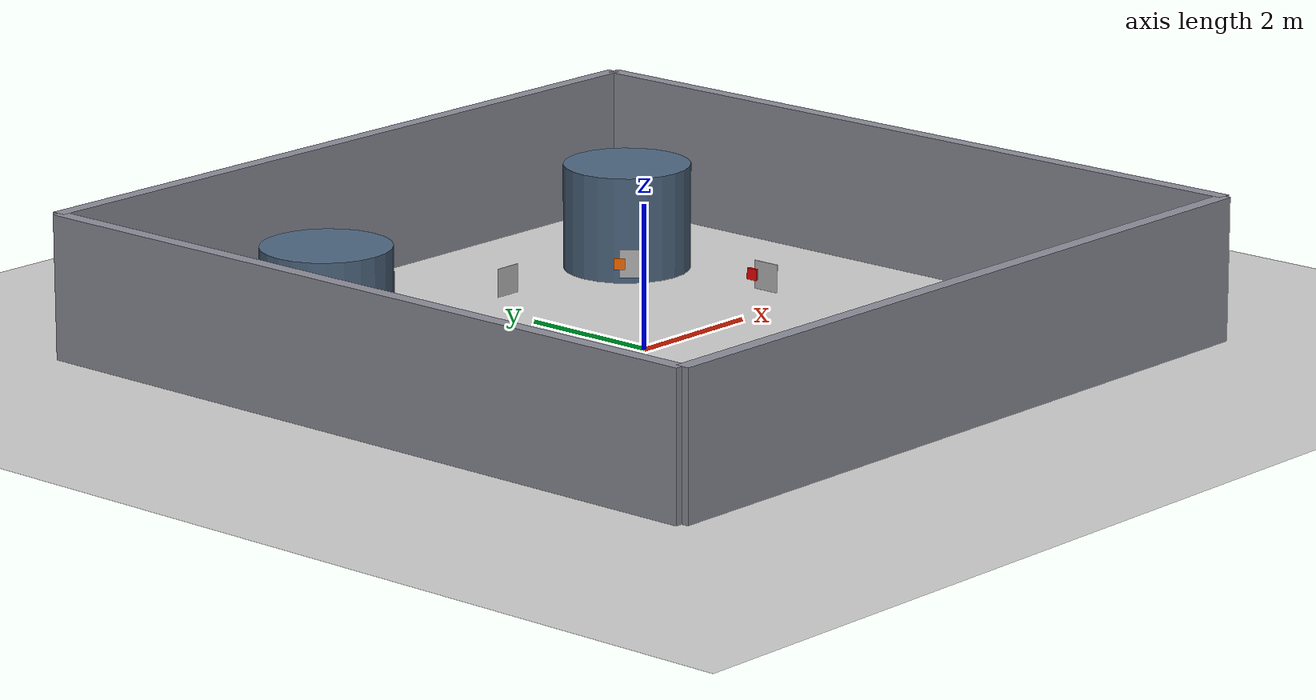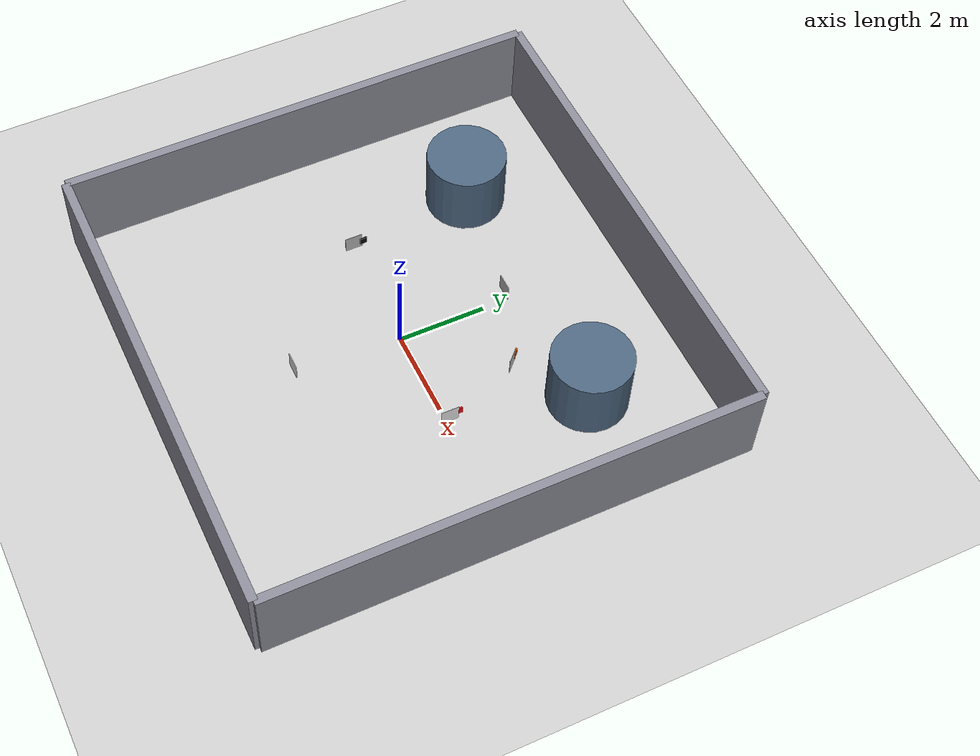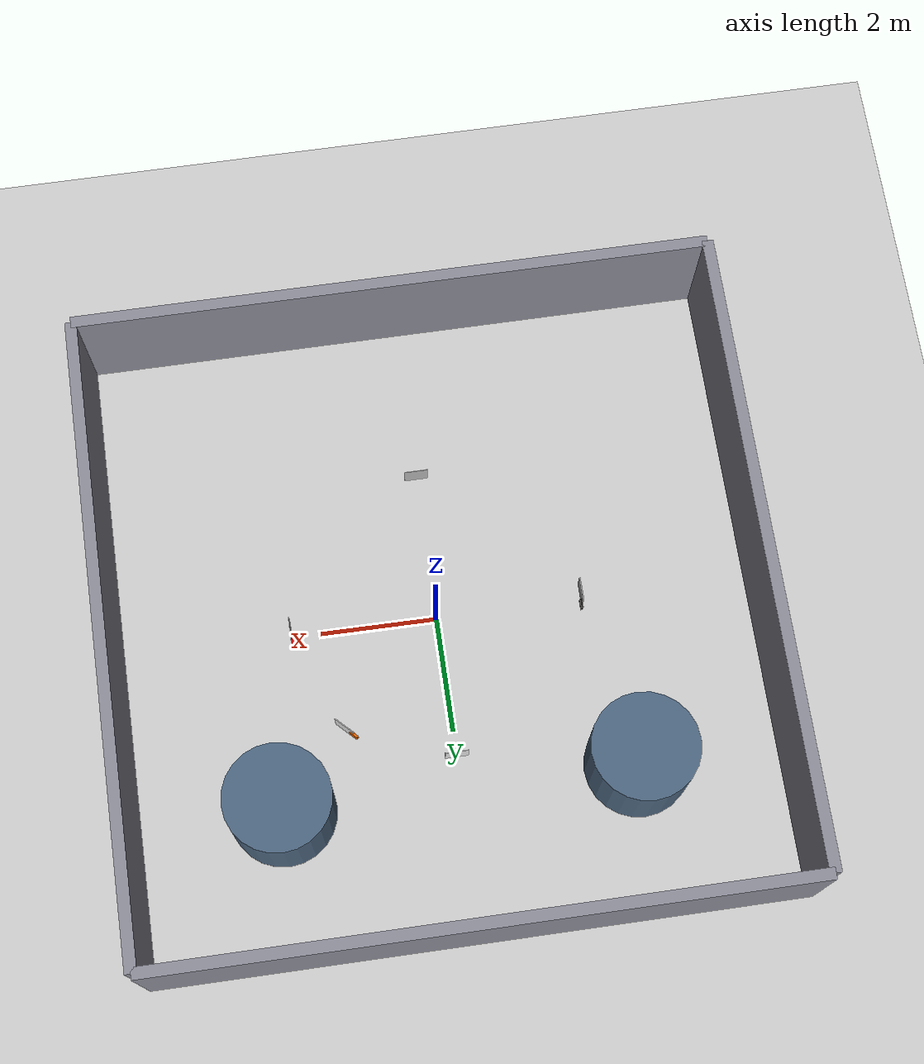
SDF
<?xml version="1.0" ?>
<sdf version="1.6">
  <world name="inspection_world">
    <physics type="ode">
      <max_step_size>0.001</max_step_size>
      <real_time_factor>1</real_time_factor>
      <real_time_update_rate>1000</real_time_update_rate>
    </physics>

    <plugin name="gazebo_ros_init" filename="libgazebo_ros_init.so"/>
    <plugin name="gazebo_ros_factory" filename="libgazebo_ros_factory.so"/>
    <plugin name="gazebo_ros_state" filename="libgazebo_ros_state.so"/>

    <include><uri>model://sun</uri></include>
    <include><uri>model://ground_plane</uri></include>

<model name="wall_0">
  <static>true</static>
  <link name="link">
    <pose>5.5 0.0 1.0 0 0 0</pose>
    <visual name="v"><geometry><box><size>0.2 11.0 2.0</size></box></geometry>
      <material><ambient>0.55 0.55 0.6 1</ambient><diffuse>0.55 0.55 0.6 1</diffuse></material>
    </visual>
    <collision name="c"><geometry><box><size>0.2 11.0 2.0</size></box></geometry></collision>
  </link>
</model>
<model name="wall_1">
  <static>true</static>
  <link name="link">
    <pose>-5.5 0.0 1.0 0 0 0</pose>
    <visual name="v"><geometry><box><size>0.2 11.0 2.0</size></box></geometry>
      <material><ambient>0.55 0.55 0.6 1</ambient><diffuse>0.55 0.55 0.6 1</diffuse></material>
    </visual>
    <collision name="c"><geometry><box><size>0.2 11.0 2.0</size></box></geometry></collision>
  </link>
</model>
<model name="wall_2">
  <static>true</static>
  <link name="link">
    <pose>0.0 5.5 1.0 0 0 0</pose>
    <visual name="v"><geometry><box><size>11.0 0.2 2.0</size></box></geometry>
      <material><ambient>0.55 0.55 0.6 1</ambient><diffuse>0.55 0.55 0.6 1</diffuse></material>
    </visual>
    <collision name="c"><geometry><box><size>11.0 0.2 2.0</size></box></geometry></collision>
  </link>
</model>
<model name="wall_3">
  <static>true</static>
  <link name="link">
    <pose>0.0 -5.5 1.0 0 0 0</pose>
    <visual name="v"><geometry><box><size>11.0 0.2 2.0</size></box></geometry>
      <material><ambient>0.55 0.55 0.6 1</ambient><diffuse>0.55 0.55 0.6 1</diffuse></material>
    </visual>
    <collision name="c"><geometry><box><size>11.0 0.2 2.0</size></box></geometry></collision>
  </link>
</model>
<model name="tank_0">
  <static>true</static>
  <link name="link">
    <pose>3.0 3.0 0.75 0 0 0</pose>
    <visual name="v"><geometry><cylinder><radius>0.9</radius><length>1.5</length></cylinder></geometry>
      <material><ambient>0.3 0.4 0.5 1</ambient><diffuse>0.3 0.4 0.5 1</diffuse></material>
    </visual>
    <collision name="c"><geometry><cylinder><radius>0.9</radius><length>1.5</length></cylinder></geometry></collision>
  </link>
</model>
<model name="tank_1">
  <static>true</static>
  <link name="link">
    <pose>-3.0 3.0 0.75 0 0 0</pose>
    <visual name="v"><geometry><cylinder><radius>0.9</radius><length>1.5</length></cylinder></geometry>
      <material><ambient>0.3 0.4 0.5 1</ambient><diffuse>0.3 0.4 0.5 1</diffuse></material>
    </visual>
    <collision name="c"><geometry><cylinder><radius>0.9</radius><length>1.5</length></cylinder></geometry></collision>
  </link>
</model>
<include>
  <uri>model://aruco_marker_0</uri>
  <name>aruco_marker_0</name>
  <pose>2.5 0.0 0.5 0 0 3.1416</pose>
</include>
<include>
  <uri>model://aruco_marker_1</uri>
  <name>aruco_marker_1</name>
  <pose>0.0 2.5 0.5 0 0 4.7124</pose>
</include>
<include>
  <uri>model://aruco_marker_2</uri>
  <name>aruco_marker_2</name>
  <pose>-2.5 0.0 0.5 0 0 0.0000</pose>
</include>
<include>
  <uri>model://aruco_marker_3</uri>
  <name>aruco_marker_3</name>
  <pose>0.0 -2.5 0.5 0 0 1.5708</pose>
</include>
<include>
  <uri>model://aruco_marker_4</uri>
  <name>aruco_marker_4</name>
  <pose>1.8 1.8 0.5 0 0 3.9270</pose>
</include>

<!-- Simulated defect: red warning indicator adjacent to marker_0 -->
<model name="defect_marker_0">
  <static>true</static>
  <link name="link">
    <pose>2.47 0.22 0.5 0 0 0</pose>
    <visual name="v">
      <geometry><box><size>0.04 0.16 0.16</size></box></geometry>
      <material>
        <ambient>0.97 0.02 0.02 1</ambient>
        <diffuse>0.97 0.02 0.02 1</diffuse>
        <specular>0.2 0.0 0.0 1</specular>
      </material>
    </visual>
  </link>
</model>

<!-- Simulated defect: dark corrosion patch adjacent to marker_2 -->
<model name="defect_marker_2">
  <static>true</static>
  <link name="link">
    <pose>-2.47 0.22 0.5 0 0 0</pose>
    <visual name="v">
      <geometry><box><size>0.04 0.16 0.16</size></box></geometry>
      <material>
        <ambient>0.04 0.03 0.02 1</ambient>
        <diffuse>0.04 0.03 0.02 1</diffuse>
        <specular>0.01 0.01 0.01 1</specular>
      </material>
    </visual>
  </link>
</model>

<!-- Simulated defect: orange heat indicator adjacent to marker_4 -->
<model name="defect_marker_4">
  <static>true</static>
  <link name="link">
    <pose>1.66 1.94 0.5 0 0 0.785</pose>
    <visual name="v">
      <geometry><box><size>0.04 0.16 0.16</size></box></geometry>
      <material>
        <ambient>0.97 0.42 0.01 1</ambient>
        <diffuse>0.97 0.42 0.01 1</diffuse>
        <specular>0.3 0.1 0.0 1</specular>
      </material>
    </visual>
  </link>
</model>

  </world>
</sdf>

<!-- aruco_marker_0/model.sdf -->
<sdf version="1.6">
  <model name="aruco_marker_0">
    <static>true</static>
    <link name="link">
      <visual name="back">
        <geometry>
          <box><size>0.01 0.4 0.4</size></box>
        </geometry>
        <material>
          <ambient>0.9 0.9 0.9 1</ambient>
          <diffuse>0.9 0.9 0.9 1</diffuse>
        </material>
      </visual>
      <visual name="face">
        <pose>0.0055 0 0 0 0 0</pose>
        <geometry>
          <box><size>0.0005 0.4 0.4</size></box>
        </geometry>
        <material>
          <script>
            <uri>model://aruco_marker_0/materials/scripts</uri>
            <uri>model://aruco_marker_0/materials/textures</uri>
            <name>aruco_marker_0</name>
          </script>
        </material>
      </visual>
      <collision name="col">
        <geometry>
          <box><size>0.01 0.4 0.4</size></box>
        </geometry>
      </collision>
    </link>
  </model>
</sdf>

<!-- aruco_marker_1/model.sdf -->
<sdf version="1.6">
  <model name="aruco_marker_1">
    <static>true</static>
    <link name="link">
      <visual name="back">
        <geometry>
          <box><size>0.01 0.4 0.4</size></box>
        </geometry>
        <material>
          <ambient>0.9 0.9 0.9 1</ambient>
          <diffuse>0.9 0.9 0.9 1</diffuse>
        </material>
      </visual>
      <visual name="face">
        <pose>0.0055 0 0 0 0 0</pose>
        <geometry>
          <box><size>0.0005 0.4 0.4</size></box>
        </geometry>
        <material>
          <script>
            <uri>model://aruco_marker_1/materials/scripts</uri>
            <uri>model://aruco_marker_1/materials/textures</uri>
            <name>aruco_marker_1</name>
          </script>
        </material>
      </visual>
      <collision name="col">
        <geometry>
          <box><size>0.01 0.4 0.4</size></box>
        </geometry>
      </collision>
    </link>
  </model>
</sdf>

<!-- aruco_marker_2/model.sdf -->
<sdf version="1.6">
  <model name="aruco_marker_2">
    <static>true</static>
    <link name="link">
      <visual name="back">
        <geometry>
          <box><size>0.01 0.4 0.4</size></box>
        </geometry>
        <material>
          <ambient>0.9 0.9 0.9 1</ambient>
          <diffuse>0.9 0.9 0.9 1</diffuse>
        </material>
      </visual>
      <visual name="face">
        <pose>0.0055 0 0 0 0 0</pose>
        <geometry>
          <box><size>0.0005 0.4 0.4</size></box>
        </geometry>
        <material>
          <script>
            <uri>model://aruco_marker_2/materials/scripts</uri>
            <uri>model://aruco_marker_2/materials/textures</uri>
            <name>aruco_marker_2</name>
          </script>
        </material>
      </visual>
      <collision name="col">
        <geometry>
          <box><size>0.01 0.4 0.4</size></box>
        </geometry>
      </collision>
    </link>
  </model>
</sdf>

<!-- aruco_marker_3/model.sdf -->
<sdf version="1.6">
  <model name="aruco_marker_3">
    <static>true</static>
    <link name="link">
      <visual name="back">
        <geometry>
          <box><size>0.01 0.4 0.4</size></box>
        </geometry>
        <material>
          <ambient>0.9 0.9 0.9 1</ambient>
          <diffuse>0.9 0.9 0.9 1</diffuse>
        </material>
      </visual>
      <visual name="face">
        <pose>0.0055 0 0 0 0 0</pose>
        <geometry>
          <box><size>0.0005 0.4 0.4</size></box>
        </geometry>
        <material>
          <script>
            <uri>model://aruco_marker_3/materials/scripts</uri>
            <uri>model://aruco_marker_3/materials/textures</uri>
            <name>aruco_marker_3</name>
          </script>
        </material>
      </visual>
      <collision name="col">
        <geometry>
          <box><size>0.01 0.4 0.4</size></box>
        </geometry>
      </collision>
    </link>
  </model>
</sdf>

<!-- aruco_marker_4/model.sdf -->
<sdf version="1.6">
  <model name="aruco_marker_4">
    <static>true</static>
    <link name="link">
      <visual name="back">
        <geometry>
          <box><size>0.01 0.4 0.4</size></box>
        </geometry>
        <material>
          <ambient>0.9 0.9 0.9 1</ambient>
          <diffuse>0.9 0.9 0.9 1</diffuse>
        </material>
      </visual>
      <visual name="face">
        <pose>0.0055 0 0 0 0 0</pose>
        <geometry>
          <box><size>0.0005 0.4 0.4</size></box>
        </geometry>
        <material>
          <script>
            <uri>model://aruco_marker_4/materials/scripts</uri>
            <uri>model://aruco_marker_4/materials/textures</uri>
            <name>aruco_marker_4</name>
          </script>
        </material>
      </visual>
      <collision name="col">
        <geometry>
          <box><size>0.01 0.4 0.4</size></box>
        </geometry>
      </collision>
    </link>
  </model>
</sdf>
